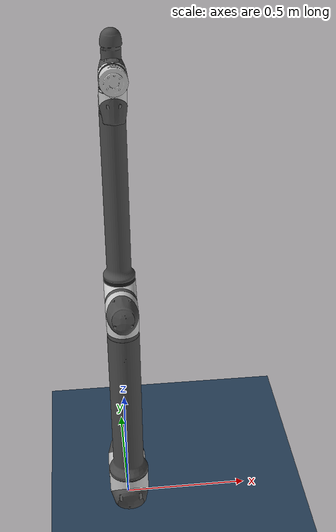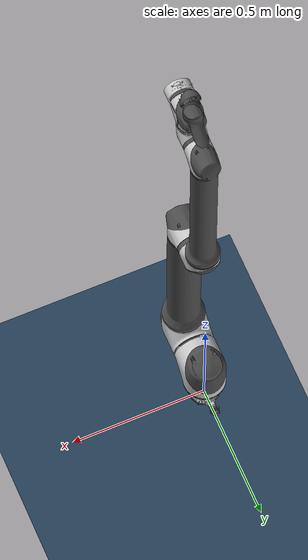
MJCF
<mujoco model="rb6_1700e_u">
  <compiler angle="radian" />
  <asset>
    <mesh name="link0" content_type="model/stl" file="../meshes/rb6_1700e_u/collision/link0.stl" />
    <mesh name="link1" content_type="model/stl" file="../meshes/rb6_1700e_u/collision/link1.stl" />
    <mesh name="link2" content_type="model/stl" file="../meshes/rb6_1700e_u/collision/link2.stl" />
    <mesh name="link3" content_type="model/stl" file="../meshes/rb6_1700e_u/collision/link3.stl" />
    <mesh name="link4" content_type="model/stl" file="../meshes/rb6_1700e_u/collision/link4.stl" />
    <mesh name="link5" content_type="model/stl" file="../meshes/rb6_1700e_u/collision/link5.stl" />
    <mesh name="link6" content_type="model/stl" file="../meshes/rb6_1700e_u/collision/link6.stl" />
    <texture type="skybox" builtin="gradient" rgb1="0.3 0.5 0.7" rgb2="0 0 0" width="512" height="3072" />
    <texture type="2d" name="groundplane" builtin="checker" mark="edge" rgb1="0.2 0.3 0.4" rgb2="0.1 0.2 0.3" markrgb="0.8 0.8 0.8" width="300" height="300" />
    <material name="groundplane" texture="groundplane" texuniform="true" texrepeat="5 5" reflectance="0.2" />
    <mesh name="link0_visual_0" file="../meshes/rb6_1700e_u/visual/link0_visual_0.obj" />
    <material name="link0_visual_0" rgba="0.8 0.8 0.8 1" specular="0" />
    <mesh name="link0_visual_1" file="../meshes/rb6_1700e_u/visual/link0_visual_1.obj" />
    <material name="link0_visual_1" rgba="0.1 0.1 0.1 1" specular="0" />
    <mesh name="link0_visual_2" file="../meshes/rb6_1700e_u/visual/link0_visual_2.obj" />
    <material name="link0_visual_2" rgba="0.3 0.3 0.3 1" specular="0" />
    <mesh name="link0_visual_3" file="../meshes/rb6_1700e_u/visual/link0_visual_3.obj" />
    <material name="link0_visual_3" rgba="0.3 0.3 0.3 1" specular="0" />
    <mesh name="link0_visual_4" file="../meshes/rb6_1700e_u/visual/link0_visual_4.obj" />
    <material name="link0_visual_4" rgba="0.3 0.3 0.3 1" specular="0" />
    <mesh name="link1_visual_0" file="../meshes/rb6_1700e_u/visual/link1_visual_0.obj" />
    <material name="link1_visual_0" rgba="0.8 0.8 0.8 1" specular="0" />
    <mesh name="link1_visual_1" file="../meshes/rb6_1700e_u/visual/link1_visual_1.obj" />
    <material name="link1_visual_1" rgba="0.3 0.3 0.3 1" specular="0" />
    <mesh name="link1_visual_2" file="../meshes/rb6_1700e_u/visual/link1_visual_2.obj" />
    <material name="link1_visual_2" rgba="0.3 0.3 0.3 1" specular="0" />
    <mesh name="link2_visual_0" file="../meshes/rb6_1700e_u/visual/link2_visual_0.obj" />
    <material name="link2_visual_0" rgba="0.3 0.3 0.3 1" specular="0" />
    <mesh name="link2_visual_1" file="../meshes/rb6_1700e_u/visual/link2_visual_1.obj" />
    <material name="link2_visual_1" rgba="0.1 0.1 0.1 1" specular="0" />
    <mesh name="link2_visual_2" file="../meshes/rb6_1700e_u/visual/link2_visual_2.obj" />
    <material name="link2_visual_2" rgba="0.3 0.3 0.3 1" specular="0" />
    <mesh name="link2_visual_3" file="../meshes/rb6_1700e_u/visual/link2_visual_3.obj" />
    <material name="link2_visual_3" rgba="0.3 0.3 0.3 1" specular="0" />
    <mesh name="link2_visual_4" file="../meshes/rb6_1700e_u/visual/link2_visual_4.obj" />
    <material name="link2_visual_4" rgba="0.8 0.8 0.8 1" specular="0" />
    <mesh name="link2_visual_5" file="../meshes/rb6_1700e_u/visual/link2_visual_5.obj" />
    <material name="link2_visual_5" rgba="0.3 0.3 0.3 1" specular="0" />
    <mesh name="link2_visual_6" file="../meshes/rb6_1700e_u/visual/link2_visual_6.obj" />
    <material name="link2_visual_6" rgba="0.3 0.3 0.3 1" specular="0" />
    <mesh name="link3_visual_0" file="../meshes/rb6_1700e_u/visual/link3_visual_0.obj" />
    <material name="link3_visual_0" rgba="0.3 0.3 0.3 1" specular="0" />
    <mesh name="link3_visual_1" file="../meshes/rb6_1700e_u/visual/link3_visual_1.obj" />
    <material name="link3_visual_1" rgba="0.1 0.1 0.1 1" specular="0" />
    <mesh name="link3_visual_2" file="../meshes/rb6_1700e_u/visual/link3_visual_2.obj" />
    <material name="link3_visual_2" rgba="0.3 0.3 0.3 1" specular="0" />
    <mesh name="link3_visual_3" file="../meshes/rb6_1700e_u/visual/link3_visual_3.obj" />
    <material name="link3_visual_3" rgba="0.8 0.8 0.8 1" specular="0" />
    <mesh name="link3_visual_4" file="../meshes/rb6_1700e_u/visual/link3_visual_4.obj" />
    <material name="link3_visual_4" rgba="0.3 0.3 0.3 1" specular="0" />
    <mesh name="link4_visual_0" file="../meshes/rb6_1700e_u/visual/link4_visual_0.obj" />
    <material name="link4_visual_0" rgba="0.3 0.3 0.3 1" specular="0" />
    <mesh name="link4_visual_1" file="../meshes/rb6_1700e_u/visual/link4_visual_1.obj" />
    <material name="link4_visual_1" rgba="0.3 0.3 0.3 1" specular="0" />
    <mesh name="link4_visual_2" file="../meshes/rb6_1700e_u/visual/link4_visual_2.obj" />
    <material name="link4_visual_2" rgba="0.8 0.8 0.8 1" specular="0" />
    <mesh name="link4_visual_3" file="../meshes/rb6_1700e_u/visual/link4_visual_3.obj" />
    <material name="link4_visual_3" rgba="0.3 0.3 0.3 1" specular="0" />
    <mesh name="link5_visual_0" file="../meshes/rb6_1700e_u/visual/link5_visual_0.obj" />
    <material name="link5_visual_0" rgba="0.3 0.3 0.3 1" specular="0" />
    <mesh name="link5_visual_1" file="../meshes/rb6_1700e_u/visual/link5_visual_1.obj" />
    <material name="link5_visual_1" rgba="0.8 0.8 0.8 1" specular="0" />
    <mesh name="link5_visual_2" file="../meshes/rb6_1700e_u/visual/link5_visual_2.obj" />
    <material name="link5_visual_2" rgba="0.1 0.1 0.1 1" specular="0" />
    <mesh name="link5_visual_3" file="../meshes/rb6_1700e_u/visual/link5_visual_3.obj" />
    <material name="link5_visual_3" rgba="0.3 0.3 0.3 1" specular="0" />
    <mesh name="link6_visual_0" file="../meshes/rb6_1700e_u/visual/link6_visual_0.obj" />
    <material name="link6_visual_0" rgba="0.8 0.8 0.8 1" specular="0" />
    <mesh name="link6_visual_1" file="../meshes/rb6_1700e_u/visual/link6_visual_1.obj" />
    <material name="link6_visual_1" rgba="0.8 0.8 0.8 1" specular="0" />
    <mesh name="link6_visual_2" file="../meshes/rb6_1700e_u/visual/link6_visual_2.obj" />
    <material name="link6_visual_2" rgba="0.8 0.8 0.8 1" specular="0" />
    <mesh name="link6_visual_3" file="../meshes/rb6_1700e_u/visual/link6_visual_3.obj" />
    <material name="link6_visual_3" rgba="0.8 0.8 0.8 1" specular="0" />
    <mesh name="link6_visual_4" file="../meshes/rb6_1700e_u/visual/link6_visual_4.obj" />
    <material name="link6_visual_4" rgba="0.8 0.8 0.8 1" specular="0" />
  </asset>
  <worldbody>
    <body name="link0" gravcomp="1">
      <geom type="mesh" mesh="link0" group="3" />
      <body name="link1" pos="0 0 0.197" gravcomp="1">
        <inertial pos="2.2e-05 -0.008087 -0.042227" quat="0.66699 0.23055 -0.230661 0.669901" mass="8.356" diaginertia="0.0301898 0.0274924 0.0238266" />
        <joint name="base" pos="0 0 0" axis="0 0 1" range="-6.28318530717959 6.28318530717959" />
        <geom type="mesh" mesh="link1" group="3" />
        <body name="link2" pos="0 -0.1875 0" gravcomp="1">
          <inertial pos="-1.2e-05 0.030051 0.30427" quat="0.706872 0.00597015 -0.0059462 0.707291" mass="16.542" diaginertia="2.08818 2.06468 0.0540953" />
          <joint name="shoulder" pos="0 0 0" axis="0 1 0" range="-6.28318530717959 6.28318530717959" />
          <geom type="mesh" mesh="link2" group="3" />
          <body name="link3" pos="0 0 0.8127" gravcomp="1">
            <inertial pos="-5.2e-05 0.139099 0.433734" quat="0.999955 0.00636373 -8.7208e-05 0.00710221" mass="6.431" diaginertia="0.618762 0.617985 0.0127568" />
            <joint name="elbow" pos="0 0 0" axis="0 1 0" range="-2.79252680319093 2.79252680319093" />
            <geom type="mesh" mesh="link3" group="3" />
            <body name="link4" pos="0 0.1514 0.77015" gravcomp="1">
              <inertial pos="0.000124 -0.113978 0.026418" quat="0.730009 0.0800338 -0.089327 0.672832" mass="2.066" diaginertia="0.00276188 0.00272483 0.00214349" />
              <joint name="wrist1" pos="0 0 0" axis="0 1 0" range="-6.28318530717959 6.28318530717959" />
              <geom type="mesh" mesh="link4" group="3" />
              <body name="link5" pos="0 -0.11715 0" gravcomp="1">
                <inertial pos="-0.000124 -0.026397 0.113946" quat="0.576215 0.464064 -0.41002 0.53339" mass="2.065" diaginertia="0.00275839 0.00272099 0.00214184" />
                <joint name="wrist2" pos="0 0 0" axis="0 0 1" range="-6.28318530717959 6.28318530717959" />
                <geom type="mesh" mesh="link5" group="3" />
                <body name="link6" pos="0 0 0.11715" gravcomp="1">
                  <inertial pos="-0.000208 -0.092542 -0.000292" quat="0.706895 -0.0427061 -0.0423862 0.704754" mass="0.406" diaginertia="0.000532785 0.000345369 0.000339825" />
                  <joint name="wrist3" pos="0 0 0" axis="0 1 0" range="-6.28318530717959 6.28318530717959" />
                  <geom type="mesh" mesh="link6" group="3" />
                  <body name="tcp" pos="0 -0.1153 0" gravcomp="1" />
                  <geom type="mesh" mesh="link6_visual_0" material="link6_visual_0" group="2" contype="0" conaffinity="0" density="0" />
                  <geom type="mesh" mesh="link6_visual_1" material="link6_visual_1" group="2" contype="0" conaffinity="0" density="0" />
                  <geom type="mesh" mesh="link6_visual_2" material="link6_visual_2" group="2" contype="0" conaffinity="0" density="0" />
                  <geom type="mesh" mesh="link6_visual_3" material="link6_visual_3" group="2" contype="0" conaffinity="0" density="0" />
                  <geom type="mesh" mesh="link6_visual_4" material="link6_visual_4" group="2" contype="0" conaffinity="0" density="0" />
                </body>
                <geom type="mesh" mesh="link5_visual_0" material="link5_visual_0" group="2" contype="0" conaffinity="0" density="0" />
                <geom type="mesh" mesh="link5_visual_1" material="link5_visual_1" group="2" contype="0" conaffinity="0" density="0" />
                <geom type="mesh" mesh="link5_visual_2" material="link5_visual_2" group="2" contype="0" conaffinity="0" density="0" />
                <geom type="mesh" mesh="link5_visual_3" material="link5_visual_3" group="2" contype="0" conaffinity="0" density="0" />
              </body>
              <geom type="mesh" mesh="link4_visual_0" material="link4_visual_0" group="2" contype="0" conaffinity="0" density="0" />
              <geom type="mesh" mesh="link4_visual_1" material="link4_visual_1" group="2" contype="0" conaffinity="0" density="0" />
              <geom type="mesh" mesh="link4_visual_2" material="link4_visual_2" group="2" contype="0" conaffinity="0" density="0" />
              <geom type="mesh" mesh="link4_visual_3" material="link4_visual_3" group="2" contype="0" conaffinity="0" density="0" />
            </body>
            <geom type="mesh" mesh="link3_visual_0" material="link3_visual_0" group="2" contype="0" conaffinity="0" density="0" />
            <geom type="mesh" mesh="link3_visual_1" material="link3_visual_1" group="2" contype="0" conaffinity="0" density="0" />
            <geom type="mesh" mesh="link3_visual_2" material="link3_visual_2" group="2" contype="0" conaffinity="0" density="0" />
            <geom type="mesh" mesh="link3_visual_3" material="link3_visual_3" group="2" contype="0" conaffinity="0" density="0" />
            <geom type="mesh" mesh="link3_visual_4" material="link3_visual_4" group="2" contype="0" conaffinity="0" density="0" />
          </body>
          <geom type="mesh" mesh="link2_visual_0" material="link2_visual_0" group="2" contype="0" conaffinity="0" density="0" />
          <geom type="mesh" mesh="link2_visual_1" material="link2_visual_1" group="2" contype="0" conaffinity="0" density="0" />
          <geom type="mesh" mesh="link2_visual_2" material="link2_visual_2" group="2" contype="0" conaffinity="0" density="0" />
          <geom type="mesh" mesh="link2_visual_3" material="link2_visual_3" group="2" contype="0" conaffinity="0" density="0" />
          <geom type="mesh" mesh="link2_visual_4" material="link2_visual_4" group="2" contype="0" conaffinity="0" density="0" />
          <geom type="mesh" mesh="link2_visual_5" material="link2_visual_5" group="2" contype="0" conaffinity="0" density="0" />
          <geom type="mesh" mesh="link2_visual_6" material="link2_visual_6" group="2" contype="0" conaffinity="0" density="0" />
        </body>
        <geom type="mesh" mesh="link1_visual_0" material="link1_visual_0" group="2" contype="0" conaffinity="0" density="0" />
        <geom type="mesh" mesh="link1_visual_1" material="link1_visual_1" group="2" contype="0" conaffinity="0" density="0" />
        <geom type="mesh" mesh="link1_visual_2" material="link1_visual_2" group="2" contype="0" conaffinity="0" density="0" />
      </body>
      <geom type="mesh" mesh="link0_visual_0" material="link0_visual_0" group="2" contype="0" conaffinity="0" density="0" />
      <geom type="mesh" mesh="link0_visual_1" material="link0_visual_1" group="2" contype="0" conaffinity="0" density="0" />
      <geom type="mesh" mesh="link0_visual_2" material="link0_visual_2" group="2" contype="0" conaffinity="0" density="0" />
      <geom type="mesh" mesh="link0_visual_3" material="link0_visual_3" group="2" contype="0" conaffinity="0" density="0" />
      <geom type="mesh" mesh="link0_visual_4" material="link0_visual_4" group="2" contype="0" conaffinity="0" density="0" />
    </body>
    <light pos="0 0 4" dir="0 0 -1" directional="true" />
    <geom name="floor" type="plane" size="0 0 0.05" material="groundplane" />
  </worldbody>
  <option timestep="0.0005" integrator="implicitfast" />
  <visual>
    <headlight diffuse="0.6 0.6 0.6" ambient="0.3 0.3 0.3" specular="0 0 0" />
    <rgba haze="0.15 0.25 0.35 1" />
    <global azimuth="140" elevation="-20" />
  </visual>
  <contact>
    <exclude body1="link0" body2="link1" />
  </contact>
  <statistic center="0 -0.081570741 0.97216517" extent="1.9921572" />
  <actuator>
    <position name="base" joint="base" kp="2000" dampratio="2" ctrlrange="-6.28318530717959 6.28318530717959" />
    <position name="shoulder" joint="shoulder" kp="2000" dampratio="2" ctrlrange="-6.28318530717959 6.28318530717959" />
    <position name="elbow" joint="elbow" kp="2000" dampratio="2" ctrlrange="-2.79252680319093 2.79252680319093" />
    <position name="wrist1" joint="wrist1" kp="2000" dampratio="2" ctrlrange="-6.28318530717959 6.28318530717959" />
    <position name="wrist2" joint="wrist2" kp="2000" dampratio="2" ctrlrange="-6.28318530717959 6.28318530717959" />
    <position name="wrist3" joint="wrist3" kp="2000" dampratio="2" ctrlrange="-6.28318530717959 6.28318530717959" />
  </actuator>
</mujoco>
